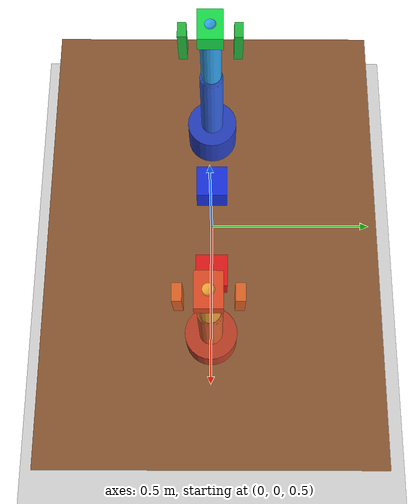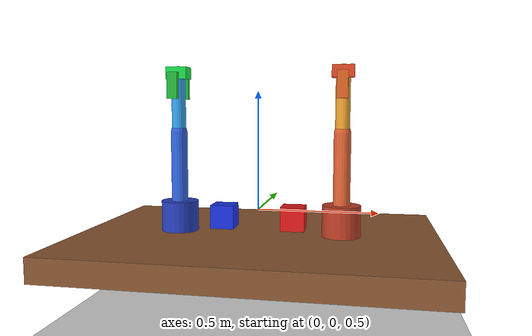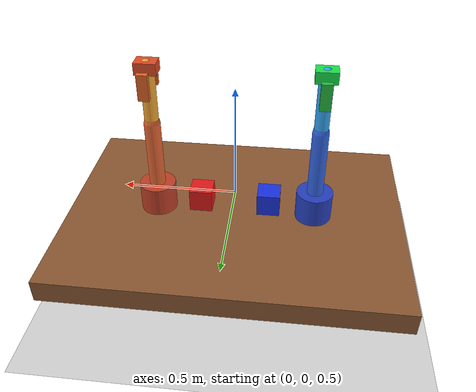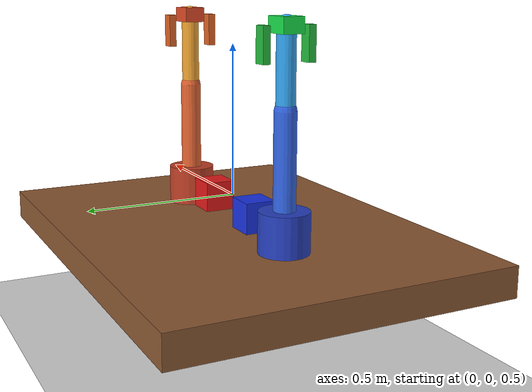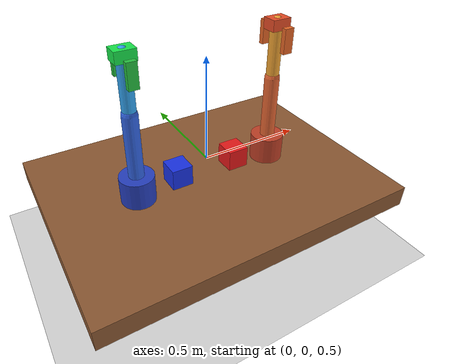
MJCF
<mujoco model="taskforge_dual_arm">

    <compiler angle="radian"/>

    <option
        timestep="0.002"
        gravity="0 0 -9.81"
        integrator="implicitfast"
    />

    <default>
        <joint damping="2"/>
        <geom friction="1 0.1 0.01"/>
    </default>

    <!-- WORLD                                             -->

    <worldbody>

        <!-- LIGHT -->

        <light
            name="main_light"
            pos="0 0 3"
            dir="0 0 -1"
        />

        <!-- FLOOR                                             -->

        <geom
            name="floor"
            type="plane"
            size="2 2 0.1"
            rgba="0.85 0.85 0.85 1"
        />

        <!-- TABLE                                             -->

        <body
            name="table"
            pos="0 0 0.35"
        >

            <geom
                name="table_geom"
                type="box"
                size="0.75 0.55 0.05"
                rgba="0.55 0.35 0.20 1"
            />

        </body>

        <!-- LEFT ROBOT ARM                                    -->

        <body
            name="left_base"
            pos="-0.35 0 0.45"
        >

            <!-- BASE -->

            <geom
                name="left_base_geom"
                type="cylinder"
                size="0.08 0.08"
                rgba="0.15 0.25 0.75 1"
            />

            <!-- LEFT UPPER ARM                                -->

            <body
                name="left_upper_arm"
                pos="0 0 0.08"
            >

                <joint
                    name="left_shoulder"
                    type="hinge"
                    axis="0 1 0"
                    range="-1.3 1.3"
                />

                <geom
                    name="left_upper_arm_geom"
                    type="capsule"
                    fromto="0 0 0 0 0 0.30"
                    size="0.035"
                    mass="1"
                    rgba="0.20 0.40 0.90 1"
                />

                <!-- LEFT FOREARM                              -->

                <body
                    name="left_forearm"
                    pos="0 0 0.30"
                >

                    <joint
                        name="left_elbow"
                        type="hinge"
                        axis="0 1 0"
                        range="-2.9 2.9"
                    />

                    <geom
                        name="left_forearm_geom"
                        type="capsule"
                        fromto="0 0 0 0 0 0.25"
                        size="0.03"
                        mass="0.7"
                        rgba="0.20 0.65 0.95 1"
                    />

                    <!-- LEFT HAND / GRIPPER                   -->

                    <body
                        name="left_hand"
                        pos="0 0 0.25"
                    >

                        <!-- PALM -->

                        <geom
                            name="left_palm_geom"
                            type="box"
                            size="0.045 0.035 0.025"
                            mass="0.15"
                            rgba="0.1 0.9 0.3 1"
                        />

                        <!-- END EFFECTOR REFERENCE -->

                        <site
                            name="left_ee"
                            pos="0 0 0"
                            type="sphere"
                            size="0.015"
                            rgba="1 1 0 1"
                        />

                        <!-- LEFT FINGER A                     -->

                        <body
                            name="left_finger_a"
                            pos="0 0.075 -0.055"
                        >

                            <joint
                                name="left_finger_a_joint"
                                type="slide"
                                axis="0 1 0"
                                range="-0.02 0"
                                damping="2"
                            />

                            <geom
                                name="left_finger_a_geom"
                                type="box"
                                size="0.022 0.012 0.055"
                                mass="0.05"
                                friction="1.5 0.1 0.01"
                                rgba="0.15 0.75 0.25 1"
                            />

                        </body>

                        <!-- LEFT FINGER B                     -->

                        <body
                            name="left_finger_b"
                            pos="0 -0.075 -0.055"
                        >

                            <joint
                                name="left_finger_b_joint"
                                type="slide"
                                axis="0 1 0"
                                range="0 0.02"
                                damping="2"
                            />

                            <geom
                                name="left_finger_b_geom"
                                type="box"
                                size="0.022 0.012 0.055"
                                mass="0.05"
                                friction="1.5 0.1 0.01"
                                rgba="0.15 0.75 0.25 1"
                            />

                        </body>

                    </body>

                </body>

            </body>

        </body>

        <!-- RIGHT ROBOT ARM                                   -->

        <body
            name="right_base"
            pos="0.35 0 0.45"
        >

            <!-- BASE -->

            <geom
                name="right_base_geom"
                type="cylinder"
                size="0.08 0.08"
                rgba="0.75 0.25 0.15 1"
            />

            <!-- RIGHT UPPER ARM                               -->

            <body
                name="right_upper_arm"
                pos="0 0 0.08"
            >

                <joint
                    name="right_shoulder"
                    type="hinge"
                    axis="0 1 0"
                    range="-1.3 1.3"
                />

                <geom
                    name="right_upper_arm_geom"
                    type="capsule"
                    fromto="0 0 0 0 0 0.30"
                    size="0.035"
                    mass="1"
                    rgba="0.90 0.40 0.20 1"
                />

                <!-- RIGHT FOREARM                             -->

                <body
                    name="right_forearm"
                    pos="0 0 0.30"
                >

                    <joint
                        name="right_elbow"
                        type="hinge"
                        axis="0 1 0"
                        range="-2.9 2.9"
                    />

                    <geom
                        name="right_forearm_geom"
                        type="capsule"
                        fromto="0 0 0 0 0 0.25"
                        size="0.03"
                        mass="0.7"
                        rgba="0.95 0.65 0.20 1"
                    />

                    <!-- RIGHT HAND / GRIPPER                  -->

                    <body
                        name="right_hand"
                        pos="0 0 0.25"
                    >

                        <!-- PALM -->

                        <geom
                            name="right_palm_geom"
                            type="box"
                            size="0.045 0.035 0.025"
                            mass="0.15"
                            rgba="0.9 0.3 0.15 1"
                        />

                        <!-- END EFFECTOR REFERENCE -->

                        <site
                            name="right_ee"
                            pos="0 0 0"
                            type="sphere"
                            size="0.015"
                            rgba="1 1 0 1"
                        />

                        <!-- RIGHT FINGER A                    -->

                        <body
                            name="right_finger_a"
                            pos="0 0.075 -0.055"
                        >

                            <joint
                                name="right_finger_a_joint"
                                type="slide"
                                axis="0 1 0"
                                range="-0.02 0"
                                damping="2"
                            />

                            <geom
                                name="right_finger_a_geom"
                                type="box"
                                size="0.022 0.012 0.055"
                                mass="0.05"
                                friction="1.5 0.1 0.01"
                                rgba="0.9 0.4 0.15 1"
                            />

                        </body>

                        <!-- RIGHT FINGER B                    -->

                        <body
                            name="right_finger_b"
                            pos="0 -0.075 -0.055"
                        >

                            <joint
                                name="right_finger_b_joint"
                                type="slide"
                                axis="0 1 0"
                                range="0 0.02"
                                damping="2"
                            />

                            <geom
                                name="right_finger_b_geom"
                                type="box"
                                size="0.022 0.012 0.055"
                                mass="0.05"
                                friction="1.5 0.1 0.01"
                                rgba="0.9 0.4 0.15 1"
                            />

                        </body>

                    </body>

                </body>

            </body>

        </body>

        <!-- RED BLOCK                                         -->

        <body
            name="red_block"
            pos="0.15 0 0.47"
        >

            <freejoint/>

            <geom
                name="red_block_geom"
                type="box"
                size="0.05 0.05 0.05"
                mass="0.2"
                friction="1.2 0.1 0.01"
                rgba="0.9 0.1 0.1 1"
            />

        </body>

        <!-- BLUE BLOCK                                        -->

        <body
            name="blue_block"
            pos="-0.15 0 0.47"
        >

            <freejoint/>

            <geom
                name="blue_block_geom"
                type="box"
                size="0.05 0.05 0.05"
                mass="0.2"
                friction="1.2 0.1 0.01"
                rgba="0.1 0.2 0.9 1"
            />

        </body>

    </worldbody>

    <!-- ACTUATORS                                         -->

    <actuator>

        <!-- LEFT ARM ACTUATORS                                -->

        <position
            name="left_shoulder_motor"
            joint="left_shoulder"
            kp="200"
            kv="25"
            ctrlrange="-1.3 1.3"
        />

        <position
            name="left_elbow_motor"
            joint="left_elbow"
            kp="180"
            kv="20"
            ctrlrange="-2.9 2.9"
        />

        <!-- LEFT GRIPPER -->

        <position
            name="left_finger_a_motor"
            joint="left_finger_a_joint"
            kp="250"
            kv="10"
            ctrlrange="-0.02 0"
        />

        <position
            name="left_finger_b_motor"
            joint="left_finger_b_joint"
            kp="250"
            kv="10"
            ctrlrange="0 0.02"
        />

        <!-- RIGHT ARM ACTUATORS                               -->

        <position
            name="right_shoulder_motor"
            joint="right_shoulder"
            kp="200"
            kv="25"
            ctrlrange="-1.3 1.3"
        />

        <position
            name="right_elbow_motor"
            joint="right_elbow"
            kp="180"
            kv="20"
            ctrlrange="-2.9 2.9"
        />

        <!-- RIGHT GRIPPER -->

        <position
            name="right_finger_a_motor"
            joint="right_finger_a_joint"
            kp="250"
            kv="10"
            ctrlrange="-0.02 0"
        />

        <position
            name="right_finger_b_motor"
            joint="right_finger_b_joint"
            kp="250"
            kv="10"
            ctrlrange="0 0.02"
        />

    </actuator>

</mujoco>
